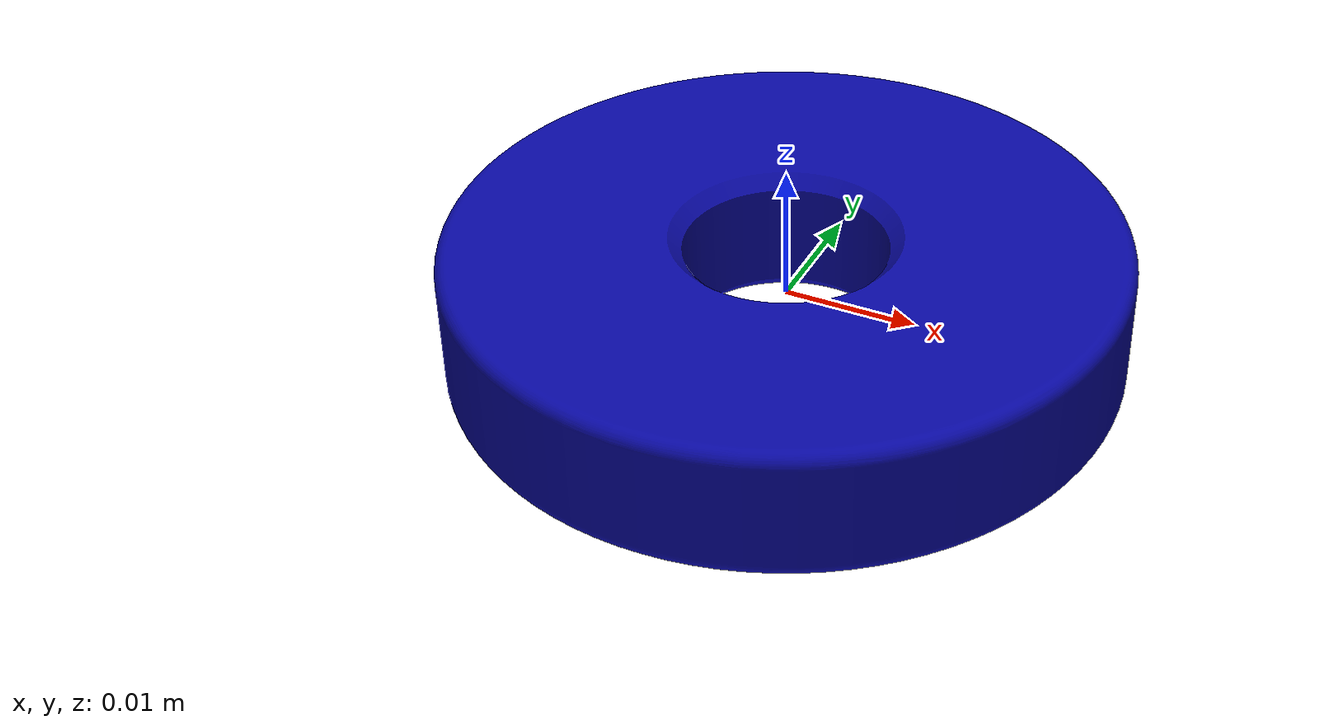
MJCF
<mujoco model="toy_five_insertion_one">
  <default>
    <default class="toy_five_insertion_one_visual">
      <geom group="2" type="mesh" contype="0" conaffinity="0"/>
    </default>
    <default class="toy_five_insertion_one_collision">
      <geom group="3" type="mesh"/>
    </default>
  </default>
  <asset>
    <material name="toy_five_insertion_one_material" specular="0.5" shininess="0.5" rgba="0.029556835 0.029556539 0.63075083 1"/>
    <mesh file="toy_five_insertion_one.obj"/>
    <mesh file="toy_five_insertion_one_collision_0.obj"/>
    <mesh file="toy_five_insertion_one_collision_1.obj"/>
    <mesh file="toy_five_insertion_one_collision_2.obj"/>
    <mesh file="toy_five_insertion_one_collision_3.obj"/>
    <mesh file="toy_five_insertion_one_collision_4.obj"/>
    <mesh file="toy_five_insertion_one_collision_5.obj"/>
    <mesh file="toy_five_insertion_one_collision_6.obj"/>
    <mesh file="toy_five_insertion_one_collision_7.obj"/>
    <mesh file="toy_five_insertion_one_collision_8.obj"/>
    <mesh file="toy_five_insertion_one_collision_9.obj"/>
    <mesh file="toy_five_insertion_one_collision_10.obj"/>
    <mesh file="toy_five_insertion_one_collision_11.obj"/>
    <mesh file="toy_five_insertion_one_collision_12.obj"/>
    <mesh file="toy_five_insertion_one_collision_13.obj"/>
    <mesh file="toy_five_insertion_one_collision_14.obj"/>
    <mesh file="toy_five_insertion_one_collision_15.obj"/>
    <mesh file="toy_five_insertion_one_collision_16.obj"/>
    <mesh file="toy_five_insertion_one_collision_17.obj"/>
    <mesh file="toy_five_insertion_one_collision_18.obj"/>
    <mesh file="toy_five_insertion_one_collision_19.obj"/>
    <mesh file="toy_five_insertion_one_collision_20.obj"/>
    <mesh file="toy_five_insertion_one_collision_21.obj"/>
    <mesh file="toy_five_insertion_one_collision_22.obj"/>
    <mesh file="toy_five_insertion_one_collision_23.obj"/>
    <mesh file="toy_five_insertion_one_collision_24.obj"/>
    <mesh file="toy_five_insertion_one_collision_25.obj"/>
    <mesh file="toy_five_insertion_one_collision_26.obj"/>
    <mesh file="toy_five_insertion_one_collision_27.obj"/>
    <mesh file="toy_five_insertion_one_collision_28.obj"/>
    <mesh file="toy_five_insertion_one_collision_29.obj"/>
    <mesh file="toy_five_insertion_one_collision_30.obj"/>
    <mesh file="toy_five_insertion_one_collision_31.obj"/>
    <mesh file="toy_five_insertion_one_collision_32.obj"/>
    <mesh file="toy_five_insertion_one_collision_33.obj"/>
    <mesh file="toy_five_insertion_one_collision_34.obj"/>
    <mesh file="toy_five_insertion_one_collision_35.obj"/>
    <mesh file="toy_five_insertion_one_collision_36.obj"/>
    <mesh file="toy_five_insertion_one_collision_37.obj"/>
    <mesh file="toy_five_insertion_one_collision_38.obj"/>
    <mesh file="toy_five_insertion_one_collision_39.obj"/>
    <mesh file="toy_five_insertion_one_collision_40.obj"/>
    <mesh file="toy_five_insertion_one_collision_41.obj"/>
    <mesh file="toy_five_insertion_one_collision_42.obj"/>
  </asset>
  <worldbody>
    <body name="toy_five_insertion_one">
      <freejoint/>
      <geom material="toy_five_insertion_one_material" mesh="toy_five_insertion_one" class="toy_five_insertion_one_visual"/>
      <geom mesh="toy_five_insertion_one_collision_0" rgba="0.41925666434818676 0.7802119805444301 0.9856531416064924 1" class="toy_five_insertion_one_collision"/>
      <geom mesh="toy_five_insertion_one_collision_1" rgba="0.27221648588669556 0.2548633996196372 0.388141855953268 1" class="toy_five_insertion_one_collision"/>
      <geom mesh="toy_five_insertion_one_collision_2" rgba="0.9172264939993166 0.9738201836298939 0.6926254685806618 1" class="toy_five_insertion_one_collision"/>
      <geom mesh="toy_five_insertion_one_collision_3" rgba="0.21399143628250517 0.8899081023348342 0.0582204873056027 1" class="toy_five_insertion_one_collision"/>
      <geom mesh="toy_five_insertion_one_collision_4" rgba="0.6382048575939583 0.59083166044187 0.40987022572453424 1" class="toy_five_insertion_one_collision"/>
      <geom mesh="toy_five_insertion_one_collision_5" rgba="0.11324045804035343 0.15144615824635954 0.9428616058065887 1" class="toy_five_insertion_one_collision"/>
      <geom mesh="toy_five_insertion_one_collision_6" rgba="0.2857946314725589 0.03832463105343087 0.6763924071076005 1" class="toy_five_insertion_one_collision"/>
      <geom mesh="toy_five_insertion_one_collision_7" rgba="0.2910687744547201 0.5846508391983847 0.30242761370150395 1" class="toy_five_insertion_one_collision"/>
      <geom mesh="toy_five_insertion_one_collision_8" rgba="0.6390306975139322 0.8641741526799415 0.2635284038233896 1" class="toy_five_insertion_one_collision"/>
      <geom mesh="toy_five_insertion_one_collision_9" rgba="0.5240683145620216 0.6619691212550398 0.4166803541305978 1" class="toy_five_insertion_one_collision"/>
      <geom mesh="toy_five_insertion_one_collision_10" rgba="0.2123034784490786 0.821218885602116 0.060688208880109284 1" class="toy_five_insertion_one_collision"/>
      <geom mesh="toy_five_insertion_one_collision_11" rgba="0.2810183965687746 0.18081296172025885 0.704946622050121 1" class="toy_five_insertion_one_collision"/>
      <geom mesh="toy_five_insertion_one_collision_12" rgba="0.3534424870077546 0.3712538705668713 0.2181073514212124 1" class="toy_five_insertion_one_collision"/>
      <geom mesh="toy_five_insertion_one_collision_13" rgba="0.30015666179756817 0.6577698458929754 0.023505756942814315 1" class="toy_five_insertion_one_collision"/>
      <geom mesh="toy_five_insertion_one_collision_14" rgba="0.7406315496730076 0.9679538409497142 0.32089644660650885 1" class="toy_five_insertion_one_collision"/>
      <geom mesh="toy_five_insertion_one_collision_15" rgba="0.5395670477628717 0.5040629716091151 0.6766380828866947 1" class="toy_five_insertion_one_collision"/>
      <geom mesh="toy_five_insertion_one_collision_16" rgba="0.05770397562986462 0.2792645789863045 0.13692899557153326 1" class="toy_five_insertion_one_collision"/>
      <geom mesh="toy_five_insertion_one_collision_17" rgba="0.4842082528323497 0.8387818968378397 0.09100054278533032 1" class="toy_five_insertion_one_collision"/>
      <geom mesh="toy_five_insertion_one_collision_18" rgba="0.7126231376268556 0.25378586946211323 0.22881537128435703 1" class="toy_five_insertion_one_collision"/>
      <geom mesh="toy_five_insertion_one_collision_19" rgba="0.7132471249239041 0.261292089033728 0.7830927772182743 1" class="toy_five_insertion_one_collision"/>
      <geom mesh="toy_five_insertion_one_collision_20" rgba="0.5446591640667513 0.5856336495006886 0.2252463002017956 1" class="toy_five_insertion_one_collision"/>
      <geom mesh="toy_five_insertion_one_collision_21" rgba="0.6910739862026747 0.521491477857656 0.9422759219873218 1" class="toy_five_insertion_one_collision"/>
      <geom mesh="toy_five_insertion_one_collision_22" rgba="0.7719137580012272 0.432067571520787 0.0014877636671410954 1" class="toy_five_insertion_one_collision"/>
      <geom mesh="toy_five_insertion_one_collision_23" rgba="0.2824722525011283 0.2595119368893942 0.935152830677278 1" class="toy_five_insertion_one_collision"/>
      <geom mesh="toy_five_insertion_one_collision_24" rgba="0.2292343314616776 0.5063398232764127 0.8748975821098985 1" class="toy_five_insertion_one_collision"/>
      <geom mesh="toy_five_insertion_one_collision_25" rgba="0.6605512434697133 0.04115321153727314 0.1140239457691673 1" class="toy_five_insertion_one_collision"/>
      <geom mesh="toy_five_insertion_one_collision_26" rgba="0.8532887914162478 0.42841172261259974 0.6634584705017237 1" class="toy_five_insertion_one_collision"/>
      <geom mesh="toy_five_insertion_one_collision_27" rgba="0.515399069055541 0.5327405205967349 0.20936060312656302 1" class="toy_five_insertion_one_collision"/>
      <geom mesh="toy_five_insertion_one_collision_28" rgba="0.7815862469544947 0.6492936613358441 0.9204754585854956 1" class="toy_five_insertion_one_collision"/>
      <geom mesh="toy_five_insertion_one_collision_29" rgba="0.40465118210752105 0.6853295360330367 0.5801606988074264 1" class="toy_five_insertion_one_collision"/>
      <geom mesh="toy_five_insertion_one_collision_30" rgba="0.5189007609394676 0.18445550043643655 0.7547172779200438 1" class="toy_five_insertion_one_collision"/>
      <geom mesh="toy_five_insertion_one_collision_31" rgba="0.8544988619165326 0.8998413915092631 0.8614979096723893 1" class="toy_five_insertion_one_collision"/>
      <geom mesh="toy_five_insertion_one_collision_32" rgba="0.010124009152523983 0.409045181176945 0.3335667568483518 1" class="toy_five_insertion_one_collision"/>
      <geom mesh="toy_five_insertion_one_collision_33" rgba="0.6650405301015754 0.8632316568925995 0.5735470609397738 1" class="toy_five_insertion_one_collision"/>
      <geom mesh="toy_five_insertion_one_collision_34" rgba="0.38436919640836187 0.08321514396958829 0.3476778128547382 1" class="toy_five_insertion_one_collision"/>
      <geom mesh="toy_five_insertion_one_collision_35" rgba="0.697775417624991 0.7899683400268636 0.9008245843007932 1" class="toy_five_insertion_one_collision"/>
      <geom mesh="toy_five_insertion_one_collision_36" rgba="0.9737306581016241 0.2586599072174478 0.511119219380704 1" class="toy_five_insertion_one_collision"/>
      <geom mesh="toy_five_insertion_one_collision_37" rgba="0.6978925909785179 0.390134808578783 0.7158090426014738 1" class="toy_five_insertion_one_collision"/>
      <geom mesh="toy_five_insertion_one_collision_38" rgba="0.39355075029332554 0.9484703589178166 0.27246379298294954 1" class="toy_five_insertion_one_collision"/>
      <geom mesh="toy_five_insertion_one_collision_39" rgba="0.7247178993202471 0.14138657846914704 0.9677707816277092 1" class="toy_five_insertion_one_collision"/>
      <geom mesh="toy_five_insertion_one_collision_40" rgba="0.48395917116635834 0.2381028831124541 0.7822007695487689 1" class="toy_five_insertion_one_collision"/>
      <geom mesh="toy_five_insertion_one_collision_41" rgba="0.6977272335086911 0.354480660515902 0.15751123623121688 1" class="toy_five_insertion_one_collision"/>
      <geom mesh="toy_five_insertion_one_collision_42" rgba="0.851954106110257 0.7120737216784571 0.020533309674133804 1" class="toy_five_insertion_one_collision"/>
    </body>
  </worldbody>
</mujoco>
